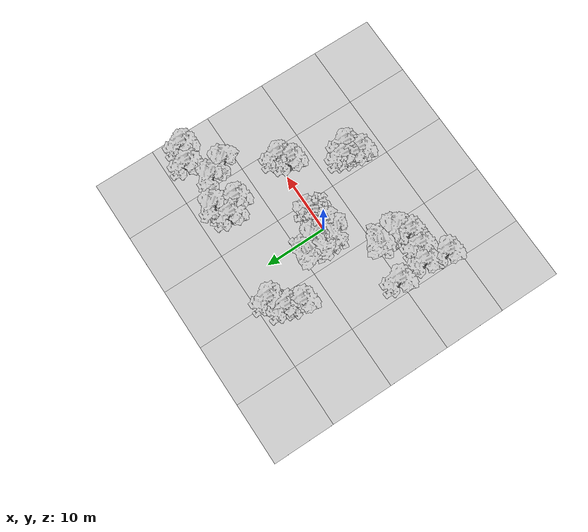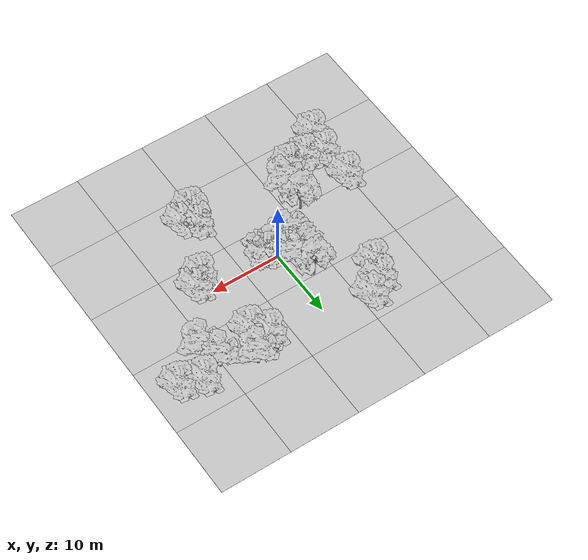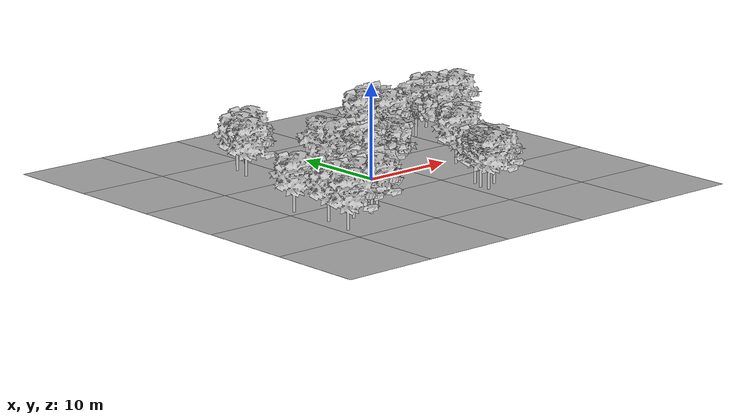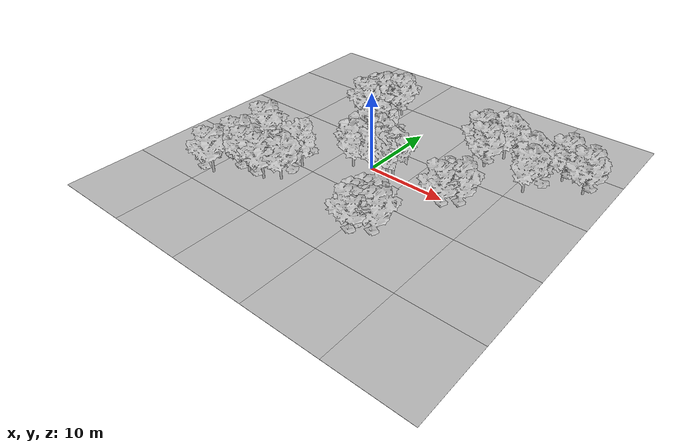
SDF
<sdf version="1.6">
 <world name="forest_1">
  <light name="sun" type="directional">
   <pose>0 0 10 0 -0 0</pose>
   <diffuse>0.8 0.8 0.8 1</diffuse>
   <specular>0.2 0.2 0.2 1</specular>
   <attenuation>
    <range>1000</range>
    <constant>0.9</constant>
    <linear>0.01</linear>
    <quadratic>0.001</quadratic>
   </attenuation>
   <direction>-0.5 0.1 -0.9</direction>
  </light>
  <include><uri>model://green_ground</uri><name>green_ground</name></include>
  <model name="world_jean_tree_001">
   <static>1</static>
   <link name="link">
    <collision name="collision">
     <pose>0 0 1 0 -0 0</pose>
     <geometry><cylinder><radius>0.22</radius><length>2</length></cylinder></geometry>
    </collision>
    <visual name="visual">
     <geometry>
      <mesh><uri>model://world_jean_tree/meshes/world_jean_tree.obj</uri><scale>1 1 1</scale></mesh>
     </geometry>
    </visual>
   </link>
   <pose>1.98624 0.404763 0 0 0 -1.40153</pose>
  </model>
  <model name="world_jean_tree_002">
   <static>1</static>
   <link name="link">
    <collision name="collision">
     <pose>0 0 1 0 -0 0</pose>
     <geometry><cylinder><radius>0.22</radius><length>2</length></cylinder></geometry>
    </collision>
    <visual name="visual">
     <geometry>
      <mesh><uri>model://world_jean_tree/meshes/world_jean_tree.obj</uri><scale>1 1 1</scale></mesh>
     </geometry>
    </visual>
   </link>
  </model>
  <model name="world_jean_tree_003">
   <static>1</static>
   <link name="link">
    <collision name="collision">
     <pose>0 0 1 0 -0 0</pose>
     <geometry><cylinder><radius>0.22</radius><length>2</length></cylinder></geometry>
    </collision>
    <visual name="visual">
     <geometry>
      <mesh><uri>model://world_jean_tree/meshes/world_jean_tree.obj</uri><scale>1 1 1</scale></mesh>
     </geometry>
    </visual>
   </link>
   <pose>-2.32104 4.74936 0 0 0 -2.40563</pose>
  </model>
  <model name="world_jean_tree_009">
   <static>1</static>
   <link name="link">
    <collision name="collision">
     <pose>0 0 1 0 -0 0</pose>
     <geometry><cylinder><radius>0.22</radius><length>2</length></cylinder></geometry>
    </collision>
    <visual name="visual">
     <geometry>
      <mesh><uri>model://world_jean_tree/meshes/world_jean_tree.obj</uri><scale>1 1 1</scale></mesh>
     </geometry>
    </visual>
   </link>
   <pose>-2.09123 -0.923786 0 0 -0 0.384187</pose>
  </model>
  <model name="world_jean_tree_010">
   <static>1</static>
   <link name="link">
    <collision name="collision">
     <pose>0 0 1 0 -0 0</pose>
     <geometry><cylinder><radius>0.22</radius><length>2</length></cylinder></geometry>
    </collision>
    <visual name="visual">
     <geometry>
      <mesh><uri>model://world_jean_tree/meshes/world_jean_tree.obj</uri><scale>1 1 1</scale></mesh>
     </geometry>
    </visual>
   </link>
   <pose>-2.37871 1.91497 0 0 -0 0.963397</pose>
  </model>
  <model name="world_jean_tree_014">
   <static>1</static>
   <link name="link">
    <collision name="collision">
     <pose>0 0 1 0 -0 0</pose>
     <geometry><cylinder><radius>0.22</radius><length>2</length></cylinder></geometry>
    </collision>
    <visual name="visual">
     <geometry>
      <mesh><uri>model://world_jean_tree/meshes/world_jean_tree.obj</uri><scale>1 1 1</scale></mesh>
     </geometry>
    </visual>
   </link>
   <pose>-1.23828 2.14476 0 0 0 -0.140443</pose>
  </model>
  <model name="world_jean_tree_018">
   <static>1</static>
   <link name="link">
    <collision name="collision">
     <pose>0 0 1 0 -0 0</pose>
     <geometry><cylinder><radius>0.22</radius><length>2</length></cylinder></geometry>
    </collision>
    <visual name="visual">
     <geometry>
      <mesh><uri>model://world_jean_tree/meshes/world_jean_tree.obj</uri><scale>1 1 1</scale></mesh>
     </geometry>
    </visual>
   </link>
   <pose>3.05098 0.223972 0 0 -0 2.20737</pose>
  </model>
  <gravity>0 0 -9.8</gravity>
  <magnetic_field>6e-06 2.3e-05 -4.2e-05</magnetic_field>
  <atmosphere type="adiabatic"/>
  <physics name="default_physics" default="0" type="ode">
   <max_step_size>0.001</max_step_size>
   <real_time_factor>1</real_time_factor>
   <real_time_update_rate>1000</real_time_update_rate>
  </physics>
  <scene><ambient>0.4 0.4 0.4 1</ambient><background>0.7 0.7 0.7 1</background><shadows>1</shadows></scene>
  <audio><device>default</device></audio>
  <spherical_coordinates>
   <surface_model>EARTH_WGS84</surface_model>
   <latitude_deg>0</latitude_deg>
   <longitude_deg>0</longitude_deg>
   <elevation>0</elevation>
   <heading_deg>0</heading_deg>
  </spherical_coordinates>
  <model name="world_jean_tree_005_clone">
   <static>1</static>
   <link name="link">
    <collision name="collision">
     <pose>0 0 1 0 -0 0</pose>
     <geometry><cylinder><radius>0.22</radius><length>2</length></cylinder></geometry>
    </collision>
    <visual name="visual">
     <geometry>
      <mesh><uri>model://world_jean_tree/meshes/world_jean_tree.obj</uri><scale>1 1 1</scale></mesh>
     </geometry>
    </visual>
   </link>
   <pose>-6.83885 -4.88726 0 0 0 -2.83525</pose>
  </model>
  <model name="world_jean_tree_006_clone">
   <static>1</static>
   <link name="link">
    <collision name="collision">
     <pose>0 0 1 0 -0 0</pose>
     <geometry><cylinder><radius>0.22</radius><length>2</length></cylinder></geometry>
    </collision>
    <visual name="visual">
     <geometry>
      <mesh><uri>model://world_jean_tree/meshes/world_jean_tree.obj</uri><scale>1 1 1</scale></mesh>
     </geometry>
    </visual>
   </link>
   <pose>-6.80626 -8.41087 0 0 0 -0.055596</pose>
  </model>
  <model name="world_jean_tree_017_clone">
   <static>1</static>
   <link name="link">
    <collision name="collision">
     <pose>0 0 1 0 -0 0</pose>
     <geometry><cylinder><radius>0.22</radius><length>2</length></cylinder></geometry>
    </collision>
    <visual name="visual">
     <geometry>
      <mesh><uri>model://world_jean_tree/meshes/world_jean_tree.obj</uri><scale>1 1 1</scale></mesh>
     </geometry>
    </visual>
   </link>
   <pose>6.66425 -8.18745 0 0 0 -0.96364</pose>
  </model>
  <model name="world_jean_tree_017_clone_0">
   <static>1</static>
   <link name="link">
    <collision name="collision">
     <pose>0 0 1 0 -0 0</pose>
     <geometry><cylinder><radius>0.22</radius><length>2</length></cylinder></geometry>
    </collision>
    <visual name="visual">
     <geometry>
      <mesh><uri>model://world_jean_tree/meshes/world_jean_tree.obj</uri><scale>1 1 1</scale></mesh>
     </geometry>
    </visual>
   </link>
   <pose>8.15353 -9.4391 0 0 0 -0.96364</pose>
  </model>
  <model name="world_jean_tree_017_clone_1">
   <static>1</static>
   <link name="link">
    <collision name="collision">
     <pose>0 0 1 0 -0 0</pose>
     <geometry><cylinder><radius>0.22</radius><length>2</length></cylinder></geometry>
    </collision>
    <visual name="visual">
     <geometry>
      <mesh><uri>model://world_jean_tree/meshes/world_jean_tree.obj</uri><scale>1 1 1</scale></mesh>
     </geometry>
    </visual>
   </link>
   <pose>6.17659 -10.6888 0 0 0 -0.96364</pose>
  </model>
  <model name="world_jean_tree_017_clone_2">
   <static>1</static>
   <link name="link">
    <collision name="collision">
     <pose>0 0 1 0 -0 0</pose>
     <geometry><cylinder><radius>0.22</radius><length>2</length></cylinder></geometry>
    </collision>
    <visual name="visual">
     <geometry>
      <mesh><uri>model://world_jean_tree/meshes/world_jean_tree.obj</uri><scale>1 1 1</scale></mesh>
     </geometry>
    </visual>
   </link>
   <pose>10.6934 -1.14963 0 0 0 -0.96364</pose>
  </model>
  <model name="world_jean_tree_017_clone_3">
   <static>1</static>
   <link name="link">
    <collision name="collision">
     <pose>0 0 1 0 -0 0</pose>
     <geometry><cylinder><radius>0.22</radius><length>2</length></cylinder></geometry>
    </collision>
    <visual name="visual">
     <geometry>
      <mesh><uri>model://world_jean_tree/meshes/world_jean_tree.obj</uri><scale>1 1 1</scale></mesh>
     </geometry>
    </visual>
   </link>
   <pose>12.1442 0.055081 0 0 0 -0.96364</pose>
  </model>
  <model name="world_jean_tree_011_clone">
   <static>1</static>
   <link name="link">
    <collision name="collision">
     <pose>0 0 1 0 -0 0</pose>
     <geometry><cylinder><radius>0.22</radius><length>2</length></cylinder></geometry>
    </collision>
    <visual name="visual">
     <geometry>
      <mesh><uri>model://world_jean_tree/meshes/world_jean_tree.obj</uri><scale>1 1 1</scale></mesh>
     </geometry>
    </visual>
   </link>
   <pose>10.0984 8.98683 0 0 0 -0.903485</pose>
  </model>
  <model name="world_jean_tree_011_clone_0">
   <static>1</static>
   <link name="link">
    <collision name="collision">
     <pose>0 0 1 0 -0 0</pose>
     <geometry><cylinder><radius>0.22</radius><length>2</length></cylinder></geometry>
    </collision>
    <visual name="visual">
     <geometry>
      <mesh><uri>model://world_jean_tree/meshes/world_jean_tree.obj</uri><scale>1 1 1</scale></mesh>
     </geometry>
    </visual>
   </link>
   <pose>8.37092 10.8652 0 0 0 -0.903485</pose>
  </model>
  <model name="world_jean_tree_011_clone_1">
   <static>1</static>
   <link name="link">
    <collision name="collision">
     <pose>0 0 1 0 -0 0</pose>
     <geometry><cylinder><radius>0.22</radius><length>2</length></cylinder></geometry>
    </collision>
    <visual name="visual">
     <geometry>
      <mesh><uri>model://world_jean_tree/meshes/world_jean_tree.obj</uri><scale>1 1 1</scale></mesh>
     </geometry>
    </visual>
   </link>
   <pose>-8.59392 9.37061 0 0 0 -0.903485</pose>
  </model>
  <model name="world_jean_tree_011_clone_3">
   <static>1</static>
   <link name="link">
    <collision name="collision">
     <pose>0 0 1 0 -0 0</pose>
     <geometry><cylinder><radius>0.22</radius><length>2</length></cylinder></geometry>
    </collision>
    <visual name="visual">
     <geometry>
      <mesh><uri>model://world_jean_tree/meshes/world_jean_tree.obj</uri><scale>1 1 1</scale></mesh>
     </geometry>
    </visual>
   </link>
   <pose>-7.80807 11.7158 0 0 0 -0.903485</pose>
  </model>
  <model name="world_jean_tree_011_clone_4">
   <static>1</static>
   <link name="link">
    <collision name="collision">
     <pose>0 0 1 0 -0 0</pose>
     <geometry><cylinder><radius>0.22</radius><length>2</length></cylinder></geometry>
    </collision>
    <visual name="visual">
     <geometry>
      <mesh><uri>model://world_jean_tree/meshes/world_jean_tree.obj</uri><scale>1 1 1</scale></mesh>
     </geometry>
    </visual>
   </link>
   <pose>-5.5028 13.1412 0 0 0 -0.903485</pose>
  </model>
  <model name="world_jean_tree_017_clone_4">
   <static>1</static>
   <link name="link">
    <collision name="collision">
     <pose>0 0 1 0 -0 0</pose>
     <geometry><cylinder><radius>0.22</radius><length>2</length></cylinder></geometry>
    </collision>
    <visual name="visual">
     <geometry>
      <mesh><uri>model://world_jean_tree/meshes/world_jean_tree.obj</uri><scale>1 1 1</scale></mesh>
     </geometry>
    </visual>
   </link>
   <pose>6.12479 -9.55925 0 0 0 -0.96364</pose>
  </model>
  <model name="world_jean_tree_017_clone_5">
   <static>1</static>
   <link name="link">
    <collision name="collision">
     <pose>0 0 1 0 -0 0</pose>
     <geometry><cylinder><radius>0.22</radius><length>2</length></cylinder></geometry>
    </collision>
    <visual name="visual">
     <geometry>
      <mesh><uri>model://world_jean_tree/meshes/world_jean_tree.obj</uri><scale>1 1 1</scale></mesh>
     </geometry>
    </visual>
   </link>
   <pose>-8.52875 -9.58702 0 0 0 -0.96364</pose>
  </model>
  <model name="world_jean_tree_017_clone_6">
   <static>1</static>
   <link name="link">
    <collision name="collision">
     <pose>0 0 1 0 -0 0</pose>
     <geometry><cylinder><radius>0.22</radius><length>2</length></cylinder></geometry>
    </collision>
    <visual name="visual">
     <geometry>
      <mesh><uri>model://world_jean_tree/meshes/world_jean_tree.obj</uri><scale>1 1 1</scale></mesh>
     </geometry>
    </visual>
   </link>
   <pose>-10.9456 -9.66295 0 0 0 -0.96364</pose>
  </model>
  <model name="world_jean_tree_017_clone_7">
   <static>1</static>
   <link name="link">
    <collision name="collision">
     <pose>0 0 1 0 -0 0</pose>
     <geometry><cylinder><radius>0.22</radius><length>2</length></cylinder></geometry>
    </collision>
    <visual name="visual">
     <geometry>
      <mesh><uri>model://world_jean_tree/meshes/world_jean_tree.obj</uri><scale>1 1 1</scale></mesh>
     </geometry>
    </visual>
   </link>
   <pose>-13.8094 -4.12286 0 0 0 -0.96364</pose>
  </model>
  <model name="world_jean_tree_014_clone">
   <static>1</static>
   <link name="link">
    <collision name="collision">
     <pose>0 0 1 0 -0 0</pose>
     <geometry><cylinder><radius>0.22</radius><length>2</length></cylinder></geometry>
    </collision>
    <visual name="visual">
     <geometry>
      <mesh><uri>model://world_jean_tree/meshes/world_jean_tree.obj</uri><scale>1 1 1</scale></mesh>
     </geometry>
    </visual>
   </link>
   <pose>11.0729 12.0525 0 0 0 -0.140443</pose>
  </model>
  <model name="world_jean_tree_014_clone_0">
   <static>1</static>
   <link name="link">
    <collision name="collision">
     <pose>0 0 1 0 -0 0</pose>
     <geometry><cylinder><radius>0.22</radius><length>2</length></cylinder></geometry>
    </collision>
    <visual name="visual">
     <geometry>
      <mesh><uri>model://world_jean_tree/meshes/world_jean_tree.obj</uri><scale>1 1 1</scale></mesh>
     </geometry>
    </visual>
   </link>
   <pose>15.2294 9.8392 0 0 0 -0.140443</pose>
  </model>
  <model name="world_jean_tree_014_clone_1">
   <static>1</static>
   <link name="link">
    <collision name="collision">
     <pose>0 0 1 0 -0 0</pose>
     <geometry><cylinder><radius>0.22</radius><length>2</length></cylinder></geometry>
    </collision>
    <visual name="visual">
     <geometry>
      <mesh><uri>model://world_jean_tree/meshes/world_jean_tree.obj</uri><scale>1 1 1</scale></mesh>
     </geometry>
    </visual>
   </link>
   <pose>16.3188 7.11802 0 0 0 -0.140443</pose>
  </model>
  <model name="world_jean_tree_017_clone_6_clone">
   <static>1</static>
   <link name="link">
    <collision name="collision">
     <pose>0 0 1 0 -0 0</pose>
     <geometry><cylinder><radius>0.22</radius><length>2</length></cylinder></geometry>
    </collision>
    <visual name="visual">
     <geometry>
      <mesh><uri>model://world_jean_tree/meshes/world_jean_tree.obj</uri><scale>1 1 1</scale></mesh>
     </geometry>
    </visual>
   </link>
   <pose>-14.1372 -12.4257 0 0 0 -0.96364</pose>
  </model>
  <model name="world_jean_tree_017_clone_6_clone_0">
   <static>1</static>
   <link name="link">
    <collision name="collision">
     <pose>0 0 1 0 -0 0</pose>
     <geometry><cylinder><radius>0.22</radius><length>2</length></cylinder></geometry>
    </collision>
    <visual name="visual">
     <geometry>
      <mesh><uri>model://world_jean_tree/meshes/world_jean_tree.obj</uri><scale>1 1 1</scale></mesh>
     </geometry>
    </visual>
   </link>
   <pose>-13.51 -8.90631 0 0 0 -0.96364</pose>
  </model>
  <model name="world_jean_tree_017_clone_3_clone">
   <static>1</static>
   <link name="link">
    <collision name="collision">
     <pose>0 0 1 0 -0 0</pose>
     <geometry><cylinder><radius>0.22</radius><length>2</length></cylinder></geometry>
    </collision>
    <visual name="visual">
     <geometry>
      <mesh><uri>model://world_jean_tree/meshes/world_jean_tree.obj</uri><scale>1 1 1</scale></mesh>
     </geometry>
    </visual>
   </link>
   <pose>21.7624 11.0588 0 0 0 -0.96364</pose>
  </model>
  <model name="world_jean_tree_017_clone_3_clone_0">
   <static>1</static>
   <link name="link">
    <collision name="collision">
     <pose>0 0 1 0 -0 0</pose>
     <geometry><cylinder><radius>0.22</radius><length>2</length></cylinder></geometry>
    </collision>
    <visual name="visual">
     <geometry>
      <mesh><uri>model://world_jean_tree/meshes/world_jean_tree.obj</uri><scale>1 1 1</scale></mesh>
     </geometry>
    </visual>
   </link>
   <pose>18.7706 12.0455 0 0 0 -0.96364</pose>
  </model>
 </world>
</sdf>

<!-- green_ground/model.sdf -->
<sdf version="1.6">
  <model name="green_ground">
    <static>true</static>
    <link name="link">
      <collision name="collision">
        <pose>0 0 0 0 0 0</pose>
        <geometry>
          <plane>
            <normal>0 0 1</normal>
            <size>200 200</size>
          </plane>
        </geometry>
      </collision>
      <visual name='visual_m20_m20'>
        <pose>-20 -20 0 0 0 0</pose>
        <geometry>
          <mesh>
            <uri>model://world_jean_ground/meshes/world_jean_ground.obj</uri>
            <scale>1 1 1</scale>
          </mesh>
        </geometry>
      </visual>      <visual name='visual_m20_m10'>
        <pose>-20 -10 0 0 0 0</pose>
        <geometry>
          <mesh>
            <uri>model://world_jean_ground/meshes/world_jean_ground.obj</uri>
            <scale>1 1 1</scale>
          </mesh>
        </geometry>
      </visual>      <visual name='visual_m20_0'>
        <pose>-20 0 0 0 0 0</pose>
        <geometry>
          <mesh>
            <uri>model://world_jean_ground/meshes/world_jean_ground.obj</uri>
            <scale>1 1 1</scale>
          </mesh>
        </geometry>
      </visual>      <visual name='visual_m20_10'>
        <pose>-20 10 0 0 0 0</pose>
        <geometry>
          <mesh>
            <uri>model://world_jean_ground/meshes/world_jean_ground.obj</uri>
            <scale>1 1 1</scale>
          </mesh>
        </geometry>
      </visual>      <visual name='visual_m20_20'>
        <pose>-20 20 0 0 0 0</pose>
        <geometry>
          <mesh>
            <uri>model://world_jean_ground/meshes/world_jean_ground.obj</uri>
            <scale>1 1 1</scale>
          </mesh>
        </geometry>
      </visual>      <visual name='visual_m10_m20'>
        <pose>-10 -20 0 0 0 0</pose>
        <geometry>
          <mesh>
            <uri>model://world_jean_ground/meshes/world_jean_ground.obj</uri>
            <scale>1 1 1</scale>
          </mesh>
        </geometry>
      </visual>      <visual name='visual_m10_m10'>
        <pose>-10 -10 0 0 0 0</pose>
        <geometry>
          <mesh>
            <uri>model://world_jean_ground/meshes/world_jean_ground.obj</uri>
            <scale>1 1 1</scale>
          </mesh>
        </geometry>
      </visual>      <visual name='visual_m10_0'>
        <pose>-10 0 0 0 0 0</pose>
        <geometry>
          <mesh>
            <uri>model://world_jean_ground/meshes/world_jean_ground.obj</uri>
            <scale>1 1 1</scale>
          </mesh>
        </geometry>
      </visual>      <visual name='visual_m10_10'>
        <pose>-10 10 0 0 0 0</pose>
        <geometry>
          <mesh>
            <uri>model://world_jean_ground/meshes/world_jean_ground.obj</uri>
            <scale>1 1 1</scale>
          </mesh>
        </geometry>
      </visual>      <visual name='visual_m10_20'>
        <pose>-10 20 0 0 0 0</pose>
        <geometry>
          <mesh>
            <uri>model://world_jean_ground/meshes/world_jean_ground.obj</uri>
            <scale>1 1 1</scale>
          </mesh>
        </geometry>
      </visual>      <visual name='visual_0_m20'>
        <pose>0 -20 0 0 0 0</pose>
        <geometry>
          <mesh>
            <uri>model://world_jean_ground/meshes/world_jean_ground.obj</uri>
            <scale>1 1 1</scale>
          </mesh>
        </geometry>
      </visual>      <visual name='visual_0_m10'>
        <pose>0 -10 0 0 0 0</pose>
        <geometry>
          <mesh>
            <uri>model://world_jean_ground/meshes/world_jean_ground.obj</uri>
            <scale>1 1 1</scale>
          </mesh>
        </geometry>
      </visual>      <visual name='visual_0_0'>
        <pose>0 0 0 0 0 0</pose>
        <geometry>
          <mesh>
            <uri>model://world_jean_ground/meshes/world_jean_ground.obj</uri>
            <scale>1 1 1</scale>
          </mesh>
        </geometry>
      </visual>      <visual name='visual_0_10'>
        <pose>0 10 0 0 0 0</pose>
        <geometry>
          <mesh>
            <uri>model://world_jean_ground/meshes/world_jean_ground.obj</uri>
            <scale>1 1 1</scale>
          </mesh>
        </geometry>
      </visual>      <visual name='visual_0_20'>
        <pose>0 20 0 0 0 0</pose>
        <geometry>
          <mesh>
            <uri>model://world_jean_ground/meshes/world_jean_ground.obj</uri>
            <scale>1 1 1</scale>
          </mesh>
        </geometry>
      </visual>      <visual name='visual_10_m20'>
        <pose>10 -20 0 0 0 0</pose>
        <geometry>
          <mesh>
            <uri>model://world_jean_ground/meshes/world_jean_ground.obj</uri>
            <scale>1 1 1</scale>
          </mesh>
        </geometry>
      </visual>      <visual name='visual_10_m10'>
        <pose>10 -10 0 0 0 0</pose>
        <geometry>
          <mesh>
            <uri>model://world_jean_ground/meshes/world_jean_ground.obj</uri>
            <scale>1 1 1</scale>
          </mesh>
        </geometry>
      </visual>      <visual name='visual_10_0'>
        <pose>10 0 0 0 0 0</pose>
        <geometry>
          <mesh>
            <uri>model://world_jean_ground/meshes/world_jean_ground.obj</uri>
            <scale>1 1 1</scale>
          </mesh>
        </geometry>
      </visual>      <visual name='visual_10_10'>
        <pose>10 10 0 0 0 0</pose>
        <geometry>
          <mesh>
            <uri>model://world_jean_ground/meshes/world_jean_ground.obj</uri>
            <scale>1 1 1</scale>
          </mesh>
        </geometry>
      </visual>      <visual name='visual_10_20'>
        <pose>10 20 0 0 0 0</pose>
        <geometry>
          <mesh>
            <uri>model://world_jean_ground/meshes/world_jean_ground.obj</uri>
            <scale>1 1 1</scale>
          </mesh>
        </geometry>
      </visual>      <visual name='visual_20_m20'>
        <pose>20 -20 0 0 0 0</pose>
        <geometry>
          <mesh>
            <uri>model://world_jean_ground/meshes/world_jean_ground.obj</uri>
            <scale>1 1 1</scale>
          </mesh>
        </geometry>
      </visual>      <visual name='visual_20_m10'>
        <pose>20 -10 0 0 0 0</pose>
        <geometry>
          <mesh>
            <uri>model://world_jean_ground/meshes/world_jean_ground.obj</uri>
            <scale>1 1 1</scale>
          </mesh>
        </geometry>
      </visual>      <visual name='visual_20_0'>
        <pose>20 0 0 0 0 0</pose>
        <geometry>
          <mesh>
            <uri>model://world_jean_ground/meshes/world_jean_ground.obj</uri>
            <scale>1 1 1</scale>
          </mesh>
        </geometry>
      </visual>      <visual name='visual_20_10'>
        <pose>20 10 0 0 0 0</pose>
        <geometry>
          <mesh>
            <uri>model://world_jean_ground/meshes/world_jean_ground.obj</uri>
            <scale>1 1 1</scale>
          </mesh>
        </geometry>
      </visual>      <visual name='visual_20_20'>
        <pose>20 20 0 0 0 0</pose>
        <geometry>
          <mesh>
            <uri>model://world_jean_ground/meshes/world_jean_ground.obj</uri>
            <scale>1 1 1</scale>
          </mesh>
        </geometry>
      </visual>      <self_collide>false</self_collide>
      <kinematic>false</kinematic>
    </link>
  </model>
</sdf>
